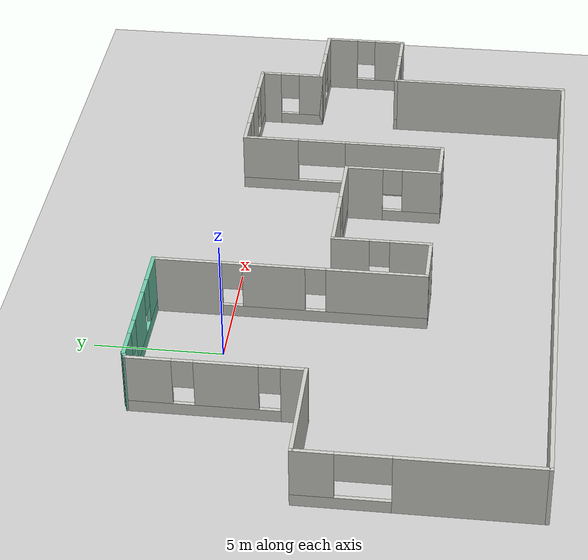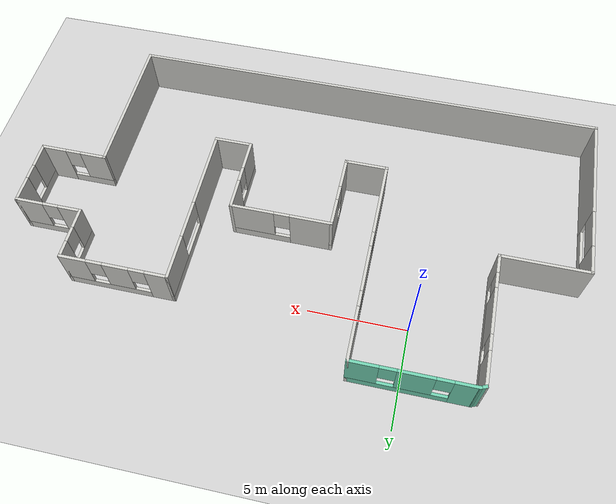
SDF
<sdf version="1.6">
 <world name="default">
  <light name="sun" type="directional">
   <pose>0 0 10 0 -0 0</pose>
   <diffuse>0.8 0.8 0.8 1</diffuse>
   <specular>0.2 0.2 0.2 1</specular>
   <attenuation>
    <range>1000</range>
    <constant>0.9</constant>
    <linear>0.01</linear>
    <quadratic>0.001</quadratic>
   </attenuation>
   <direction>-0.5 0.1 -0.9</direction>
  </light>
  <model name="ground_plane">
   <static>1</static>
   <link name="link">
    <collision name="collision">
     <geometry><plane><normal>0 0 1</normal><size>100 100</size></plane></geometry>
     <surface>
      <contact><collide_bitmask>65535</collide_bitmask></contact>
      <friction><ode><mu>100</mu><mu2>50</mu2></ode></friction>
     </surface>
    </collision>
    <visual name="visual">
     <cast_shadows>0</cast_shadows>
     <geometry><plane><normal>0 0 1</normal><size>100 100</size></plane></geometry>
     <material>
      <script><uri>file://media/materials/scripts/gazebo.material</uri><name>Gazebo/Grey</name></script>
     </material>
    </visual>
   </link>
  </model>
  <gravity>0 0 -9.8</gravity>
  <magnetic_field>6e-06 2.3e-05 -4.2e-05</magnetic_field>
  <atmosphere type="adiabatic"/>
  <physics name="default_physics" default="0" type="ode">
   <max_step_size>0.001</max_step_size>
   <real_time_factor>1</real_time_factor>
   <real_time_update_rate>1000</real_time_update_rate>
  </physics>
  <scene><ambient>0.4 0.4 0.4 1</ambient><background>0.7 0.7 0.7 1</background><shadows>1</shadows></scene>
  <spherical_coordinates>
   <surface_model>EARTH_WGS84</surface_model>
   <latitude_deg>0</latitude_deg>
   <longitude_deg>0</longitude_deg>
   <elevation>0</elevation>
   <heading_deg>0</heading_deg>
  </spherical_coordinates>
  <model name="building_0">
   <pose>6.1574 -4.71234 0 0 -0 0</pose>
   <link name="Wall_12">
    <pose>-6.575 7.76375 0 0 -0 0</pose>
    <visual name="Wall_12_Visual_0">
     <pose>-2.41181 0 1.25 0 -0 0</pose>
     <geometry><box><size>1.17637 0.15 2.5</size></box></geometry>
     <material>
      <script><uri>file://media/materials/scripts/gazebo.material</uri><name>Gazebo/Grey</name></script>
      <ambient>0.435294 0.796078 0.67451 1</ambient>
     </material>
     <meta><layer>0</layer></meta>
    </visual>
    <collision name="Wall_12_Collision_0">
     <geometry><box><size>1.17637 0.15 2.5</size></box></geometry>
     <pose>-2.41181 0 1.25 0 -0 0</pose>
    </collision>
    <visual name="Wall_12_Visual_1">
     <pose>0.588187 0 0.25 0 -0 0</pose>
     <geometry><box><size>4.82363 0.15 0.5</size></box></geometry>
     <material>
      <script><uri>file://media/materials/scripts/gazebo.material</uri><name>Gazebo/Grey</name></script>
      <ambient>0.435294 0.796078 0.67451 1</ambient>
     </material>
     <meta><layer>0</layer></meta>
    </visual>
    <collision name="Wall_12_Collision_1">
     <geometry><box><size>4.82363 0.15 0.5</size></box></geometry>
     <pose>0.588187 0 0.25 0 -0 0</pose>
    </collision>
    <visual name="Wall_12_Visual_2">
     <pose>-0.158626 0 1.5 0 -0 0</pose>
     <geometry><box><size>1.73 0.15 2</size></box></geometry>
     <material>
      <script><uri>file://media/materials/scripts/gazebo.material</uri><name>Gazebo/Grey</name></script>
      <ambient>0.435294 0.796078 0.67451 1</ambient>
     </material>
     <meta><layer>0</layer></meta>
    </visual>
    <collision name="Wall_12_Collision_2">
     <geometry><box><size>1.73 0.15 2</size></box></geometry>
     <pose>-0.158626 0 1.5 0 -0 0</pose>
    </collision>
    <visual name="Wall_12_Visual_3">
     <pose>2.25319 0 1.5 0 -0 0</pose>
     <geometry><box><size>1.49362 0.15 2</size></box></geometry>
     <material>
      <script><uri>file://media/materials/scripts/gazebo.material</uri><name>Gazebo/Grey</name></script>
      <ambient>0.435294 0.796078 0.67451 1</ambient>
     </material>
     <meta><layer>0</layer></meta>
    </visual>
    <collision name="Wall_12_Collision_3">
     <geometry><box><size>1.49362 0.15 2</size></box></geometry>
     <pose>2.25319 0 1.5 0 -0 0</pose>
    </collision>
    <visual name="Wall_12_Visual_4">
     <pose>-1.42363 0 1.9 0 -0 0</pose>
     <geometry><box><size>0.8 0.15 1.2</size></box></geometry>
     <material>
      <script><uri>file://media/materials/scripts/gazebo.material</uri><name>Gazebo/Grey</name></script>
      <ambient>0.435294 0.796078 0.67451 1</ambient>
     </material>
     <meta><layer>0</layer></meta>
    </visual>
    <collision name="Wall_12_Collision_4">
     <geometry><box><size>0.8 0.15 1.2</size></box></geometry>
     <pose>-1.42363 0 1.9 0 -0 0</pose>
    </collision>
    <visual name="Wall_12_Visual_5">
     <pose>1.10638 0 1.9 0 -0 0</pose>
     <geometry><box><size>0.8 0.15 1.2</size></box></geometry>
     <material>
      <script><uri>file://media/materials/scripts/gazebo.material</uri><name>Gazebo/Grey</name></script>
      <ambient>0.435294 0.796078 0.67451 1</ambient>
     </material>
     <meta><layer>0</layer></meta>
    </visual>
    <collision name="Wall_12_Collision_5">
     <geometry><box><size>0.8 0.15 1.2</size></box></geometry>
     <pose>1.10638 0 1.9 0 -0 0</pose>
    </collision>
   </link>
   <link name="Wall_14">
    <pose>-3.65 2.46375 0 0 -0 -1.5708</pose>
    <visual name="Wall_14_Visual_0">
     <pose>-4.00095 0 1.25 0 -0 0</pose>
     <geometry><box><size>2.7481 0.15 2.5</size></box></geometry>
     <material>
      <script><uri>file://media/materials/scripts/gazebo.material</uri><name>Gazebo/CeilingTiled</name></script>
      <ambient>0.435294 0.796078 0.67451 1</ambient>
     </material>
     <meta><layer>0</layer></meta>
    </visual>
    <collision name="Wall_14_Collision_0">
     <geometry><box><size>2.7481 0.15 2.5</size></box></geometry>
     <pose>-4.00095 0 1.25 0 -0 0</pose>
    </collision>
    <visual name="Wall_14_Visual_1">
     <pose>1.37405 0 0.25 0 -0 0</pose>
     <geometry><box><size>8.0019 0.15 0.5</size></box></geometry>
     <material>
      <script><uri>file://media/materials/scripts/gazebo.material</uri><name>Gazebo/CeilingTiled</name></script>
      <ambient>0.435294 0.796078 0.67451 1</ambient>
     </material>
     <meta><layer>0</layer></meta>
    </visual>
    <collision name="Wall_14_Collision_1">
     <geometry><box><size>8.0019 0.15 0.5</size></box></geometry>
     <pose>1.37405 0 0.25 0 -0 0</pose>
    </collision>
    <visual name="Wall_14_Visual_2">
     <pose>-0.606902 0 1.5 0 -0 0</pose>
     <geometry><box><size>2.44 0.15 2</size></box></geometry>
     <material>
      <script><uri>file://media/materials/scripts/gazebo.material</uri><name>Gazebo/CeilingTiled</name></script>
      <ambient>0.435294 0.796078 0.67451 1</ambient>
     </material>
     <meta><layer>0</layer></meta>
    </visual>
    <collision name="Wall_14_Collision_2">
     <geometry><box><size>2.44 0.15 2</size></box></geometry>
     <pose>-0.606902 0 1.5 0 -0 0</pose>
    </collision>
    <visual name="Wall_14_Visual_3">
     <pose>3.39405 0 1.5 0 -0 0</pose>
     <geometry><box><size>3.9619 0.15 2</size></box></geometry>
     <material>
      <script><uri>file://media/materials/scripts/gazebo.material</uri><name>Gazebo/CeilingTiled</name></script>
      <ambient>0.435294 0.796078 0.67451 1</ambient>
     </material>
     <meta><layer>0</layer></meta>
    </visual>
    <collision name="Wall_14_Collision_3">
     <geometry><box><size>3.9619 0.15 2</size></box></geometry>
     <pose>3.39405 0 1.5 0 -0 0</pose>
    </collision>
    <visual name="Wall_14_Visual_4">
     <pose>-2.2269 0 1.9 0 -0 0</pose>
     <geometry><box><size>0.8 0.15 1.2</size></box></geometry>
     <material>
      <script><uri>file://media/materials/scripts/gazebo.material</uri><name>Gazebo/CeilingTiled</name></script>
      <ambient>0.435294 0.796078 0.67451 1</ambient>
     </material>
     <meta><layer>0</layer></meta>
    </visual>
    <collision name="Wall_14_Collision_4">
     <geometry><box><size>0.8 0.15 1.2</size></box></geometry>
     <pose>-2.2269 0 1.9 0 -0 0</pose>
    </collision>
    <visual name="Wall_14_Visual_5">
     <pose>1.0131 0 1.9 0 -0 0</pose>
     <geometry><box><size>0.8 0.15 1.2</size></box></geometry>
     <material>
      <script><uri>file://media/materials/scripts/gazebo.material</uri><name>Gazebo/CeilingTiled</name></script>
      <ambient>0.435294 0.796078 0.67451 1</ambient>
     </material>
     <meta><layer>0</layer></meta>
    </visual>
    <collision name="Wall_14_Collision_5">
     <geometry><box><size>0.8 0.15 1.2</size></box></geometry>
     <pose>1.0131 0 1.9 0 -0 0</pose>
    </collision>
   </link>
   <link name="Wall_15">
    <collision name="Wall_15_Collision">
     <geometry><box><size>2.25 0.15 2.5</size></box></geometry>
     <pose>0 0 1.25 0 -0 0</pose>
    </collision>
    <visual name="Wall_15_Visual">
     <pose>0 0 1.25 0 -0 0</pose>
     <geometry><box><size>2.25 0.15 2.5</size></box></geometry>
     <material>
      <script><uri>file://media/materials/scripts/gazebo.material</uri><name>Gazebo/CeilingTiled</name></script>
      <ambient>0.435294 0.796078 0.67451 1</ambient>
     </material>
     <meta><layer>0</layer></meta>
    </visual>
    <pose>-2.6 -2.83624 0 0 -0 0</pose>
   </link>
   <link name="Wall_16">
    <pose>-1.55 -0.911245 0 0 -0 1.5708</pose>
    <visual name="Wall_16_Visual_0">
     <pose>-1.15905 0 1.25 0 -0 0</pose>
     <geometry><box><size>1.6819 0.15 2.5</size></box></geometry>
     <material>
      <script><uri>file://media/materials/scripts/gazebo.material</uri><name>Gazebo/CeilingTiled</name></script>
      <ambient>0.435294 0.796078 0.67451 1</ambient>
     </material>
     <meta><layer>0</layer></meta>
    </visual>
    <collision name="Wall_16_Collision_0">
     <geometry><box><size>1.6819 0.15 2.5</size></box></geometry>
     <pose>-1.15905 0 1.25 0 -0 0</pose>
    </collision>
    <visual name="Wall_16_Visual_1">
     <pose>0.840951 0 0.25 0 -0 0</pose>
     <geometry><box><size>2.3181 0.15 0.5</size></box></geometry>
     <material>
      <script><uri>file://media/materials/scripts/gazebo.material</uri><name>Gazebo/CeilingTiled</name></script>
      <ambient>0.435294 0.796078 0.67451 1</ambient>
     </material>
     <meta><layer>0</layer></meta>
    </visual>
    <collision name="Wall_16_Collision_1">
     <geometry><box><size>2.3181 0.15 0.5</size></box></geometry>
     <pose>0.840951 0 0.25 0 -0 0</pose>
    </collision>
    <visual name="Wall_16_Visual_2">
     <pose>1.24095 0 1.5 0 -0 0</pose>
     <geometry><box><size>1.5181 0.15 2</size></box></geometry>
     <material>
      <script><uri>file://media/materials/scripts/gazebo.material</uri><name>Gazebo/CeilingTiled</name></script>
      <ambient>0.435294 0.796078 0.67451 1</ambient>
     </material>
     <meta><layer>0</layer></meta>
    </visual>
    <collision name="Wall_16_Collision_2">
     <geometry><box><size>1.5181 0.15 2</size></box></geometry>
     <pose>1.24095 0 1.5 0 -0 0</pose>
    </collision>
    <visual name="Wall_16_Visual_3">
     <pose>0.081902 0 1.9 0 -0 0</pose>
     <geometry><box><size>0.8 0.15 1.2</size></box></geometry>
     <material>
      <script><uri>file://media/materials/scripts/gazebo.material</uri><name>Gazebo/CeilingTiled</name></script>
      <ambient>0.435294 0.796078 0.67451 1</ambient>
     </material>
     <meta><layer>0</layer></meta>
    </visual>
    <collision name="Wall_16_Collision_3">
     <geometry><box><size>0.8 0.15 1.2</size></box></geometry>
     <pose>0.081902 0 1.9 0 -0 0</pose>
    </collision>
   </link>
   <link name="Wall_17">
    <pose>1 1.01375 0 0 -0 0</pose>
    <visual name="Wall_17_Visual_0">
     <pose>-1.53594 0 1.25 0 -0 0</pose>
     <geometry><box><size>2.17812 0.15 2.5</size></box></geometry>
     <material>
      <script><uri>file://media/materials/scripts/gazebo.material</uri><name>Gazebo/CeilingTiled</name></script>
      <ambient>0.435294 0.796078 0.67451 1</ambient>
     </material>
     <meta><layer>0</layer></meta>
    </visual>
    <collision name="Wall_17_Collision_0">
     <geometry><box><size>2.17812 0.15 2.5</size></box></geometry>
     <pose>-1.53594 0 1.25 0 -0 0</pose>
    </collision>
    <visual name="Wall_17_Visual_1">
     <pose>1.08906 0 0.25 0 -0 0</pose>
     <geometry><box><size>3.07188 0.15 0.5</size></box></geometry>
     <material>
      <script><uri>file://media/materials/scripts/gazebo.material</uri><name>Gazebo/CeilingTiled</name></script>
      <ambient>0.435294 0.796078 0.67451 1</ambient>
     </material>
     <meta><layer>0</layer></meta>
    </visual>
    <collision name="Wall_17_Collision_1">
     <geometry><box><size>3.07188 0.15 0.5</size></box></geometry>
     <pose>1.08906 0 0.25 0 -0 0</pose>
    </collision>
    <visual name="Wall_17_Visual_2">
     <pose>1.48906 0 1.5 0 -0 0</pose>
     <geometry><box><size>2.27188 0.15 2</size></box></geometry>
     <material>
      <script><uri>file://media/materials/scripts/gazebo.material</uri><name>Gazebo/CeilingTiled</name></script>
      <ambient>0.435294 0.796078 0.67451 1</ambient>
     </material>
     <meta><layer>0</layer></meta>
    </visual>
    <collision name="Wall_17_Collision_2">
     <geometry><box><size>2.27188 0.15 2</size></box></geometry>
     <pose>1.48906 0 1.5 0 -0 0</pose>
    </collision>
    <visual name="Wall_17_Visual_3">
     <pose>-0.04688 0 1.9 0 -0 0</pose>
     <geometry><box><size>0.8 0.15 1.2</size></box></geometry>
     <material>
      <script><uri>file://media/materials/scripts/gazebo.material</uri><name>Gazebo/CeilingTiled</name></script>
      <ambient>0.435294 0.796078 0.67451 1</ambient>
     </material>
     <meta><layer>0</layer></meta>
    </visual>
    <collision name="Wall_17_Collision_3">
     <geometry><box><size>0.8 0.15 1.2</size></box></geometry>
     <pose>-0.04688 0 1.9 0 -0 0</pose>
    </collision>
   </link>
   <link name="Wall_18">
    <pose>3.55 -0.911245 0 0 -0 -1.5708</pose>
    <visual name="Wall_18_Visual_0">
     <pose>-1.20095 0 1.25 0 -0 0</pose>
     <geometry><box><size>1.5981 0.15 2.5</size></box></geometry>
     <material>
      <script><uri>file://media/materials/scripts/gazebo.material</uri><name>Gazebo/CeilingTiled</name></script>
      <ambient>0.435294 0.796078 0.67451 1</ambient>
     </material>
     <meta><layer>0</layer></meta>
    </visual>
    <collision name="Wall_18_Collision_0">
     <geometry><box><size>1.5981 0.15 2.5</size></box></geometry>
     <pose>-1.20095 0 1.25 0 -0 0</pose>
    </collision>
    <visual name="Wall_18_Visual_1">
     <pose>0.799049 0 0.25 0 -0 0</pose>
     <geometry><box><size>2.4019 0.15 0.5</size></box></geometry>
     <material>
      <script><uri>file://media/materials/scripts/gazebo.material</uri><name>Gazebo/CeilingTiled</name></script>
      <ambient>0.435294 0.796078 0.67451 1</ambient>
     </material>
     <meta><layer>0</layer></meta>
    </visual>
    <collision name="Wall_18_Collision_1">
     <geometry><box><size>2.4019 0.15 0.5</size></box></geometry>
     <pose>0.799049 0 0.25 0 -0 0</pose>
    </collision>
    <visual name="Wall_18_Visual_2">
     <pose>1.19905 0 1.5 0 -0 0</pose>
     <geometry><box><size>1.6019 0.15 2</size></box></geometry>
     <material>
      <script><uri>file://media/materials/scripts/gazebo.material</uri><name>Gazebo/CeilingTiled</name></script>
      <ambient>0.435294 0.796078 0.67451 1</ambient>
     </material>
     <meta><layer>0</layer></meta>
    </visual>
    <collision name="Wall_18_Collision_2">
     <geometry><box><size>1.6019 0.15 2</size></box></geometry>
     <pose>1.19905 0 1.5 0 -0 0</pose>
    </collision>
    <visual name="Wall_18_Visual_3">
     <pose>-0.001901 0 1.9 0 -0 0</pose>
     <geometry><box><size>0.8 0.15 1.2</size></box></geometry>
     <material>
      <script><uri>file://media/materials/scripts/gazebo.material</uri><name>Gazebo/CeilingTiled</name></script>
      <ambient>0.435294 0.796078 0.67451 1</ambient>
     </material>
     <meta><layer>0</layer></meta>
    </visual>
    <collision name="Wall_18_Collision_3">
     <geometry><box><size>0.8 0.15 1.2</size></box></geometry>
     <pose>-0.001901 0 1.9 0 -0 0</pose>
    </collision>
   </link>
   <link name="Wall_19">
    <collision name="Wall_19_Collision">
     <geometry><box><size>2 0.15 2.5</size></box></geometry>
     <pose>0 0 1.25 0 -0 0</pose>
    </collision>
    <visual name="Wall_19_Visual">
     <pose>0 0 1.25 0 -0 0</pose>
     <geometry><box><size>2 0.15 2.5</size></box></geometry>
     <material>
      <script><uri>file://media/materials/scripts/gazebo.material</uri><name>Gazebo/CeilingTiled</name></script>
      <ambient>0.435294 0.796078 0.67451 1</ambient>
     </material>
     <meta><layer>0</layer></meta>
    </visual>
    <pose>4.475 -2.83624 0 0 -0 0</pose>
   </link>
   <link name="Wall_20">
    <pose>5.4 1.33875 0 0 -0 1.5708</pose>
    <visual name="Wall_20_Visual_0">
     <pose>-2.16905 0 1.25 0 -0 0</pose>
     <geometry><box><size>4.1619 0.15 2.5</size></box></geometry>
     <material>
      <script><uri>file://media/materials/scripts/gazebo.material</uri><name>Gazebo/CeilingTiled</name></script>
      <ambient>0.435294 0.796078 0.67451 1</ambient>
     </material>
     <meta><layer>0</layer></meta>
    </visual>
    <collision name="Wall_20_Collision_0">
     <geometry><box><size>4.1619 0.15 2.5</size></box></geometry>
     <pose>-2.16905 0 1.25 0 -0 0</pose>
    </collision>
    <visual name="Wall_20_Visual_1">
     <pose>2.08095 0 0.25 0 -0 0</pose>
     <geometry><box><size>4.3381 0.15 0.5</size></box></geometry>
     <material>
      <script><uri>file://media/materials/scripts/gazebo.material</uri><name>Gazebo/CeilingTiled</name></script>
      <ambient>0.435294 0.796078 0.67451 1</ambient>
     </material>
     <meta><layer>0</layer></meta>
    </visual>
    <collision name="Wall_20_Collision_1">
     <geometry><box><size>4.3381 0.15 0.5</size></box></geometry>
     <pose>2.08095 0 0.25 0 -0 0</pose>
    </collision>
    <visual name="Wall_20_Visual_2">
     <pose>3.08095 0 1.5 0 -0 0</pose>
     <geometry><box><size>2.3381 0.15 2</size></box></geometry>
     <material>
      <script><uri>file://media/materials/scripts/gazebo.material</uri><name>Gazebo/CeilingTiled</name></script>
      <ambient>0.435294 0.796078 0.67451 1</ambient>
     </material>
     <meta><layer>0</layer></meta>
    </visual>
    <collision name="Wall_20_Collision_2">
     <geometry><box><size>2.3381 0.15 2</size></box></geometry>
     <pose>3.08095 0 1.5 0 -0 0</pose>
    </collision>
    <visual name="Wall_20_Visual_3">
     <pose>0.911901 0 1.9 0 -0 0</pose>
     <geometry><box><size>2 0.15 1.2</size></box></geometry>
     <material>
      <script><uri>file://media/materials/scripts/gazebo.material</uri><name>Gazebo/CeilingTiled</name></script>
      <ambient>0.435294 0.796078 0.67451 1</ambient>
     </material>
     <meta><layer>0</layer></meta>
    </visual>
    <collision name="Wall_20_Collision_3">
     <geometry><box><size>2 0.15 1.2</size></box></geometry>
     <pose>0.911901 0 1.9 0 -0 0</pose>
    </collision>
   </link>
   <link name="Wall_21">
    <pose>8.075 5.51375 0 0 -0 0</pose>
    <visual name="Wall_21_Visual_0">
     <pose>-2.15594 0 1.25 0 -0 0</pose>
     <geometry><box><size>1.18812 0.15 2.5</size></box></geometry>
     <material>
      <script><uri>file://media/materials/scripts/gazebo.material</uri><name>Gazebo/CeilingTiled</name></script>
      <ambient>0.435294 0.796078 0.67451 1</ambient>
     </material>
     <meta><layer>0</layer></meta>
    </visual>
    <collision name="Wall_21_Collision_0">
     <geometry><box><size>1.18812 0.15 2.5</size></box></geometry>
     <pose>-2.15594 0 1.25 0 -0 0</pose>
    </collision>
    <visual name="Wall_21_Visual_1">
     <pose>0.59406 0 0.25 0 -0 0</pose>
     <geometry><box><size>4.31188 0.15 0.5</size></box></geometry>
     <material>
      <script><uri>file://media/materials/scripts/gazebo.material</uri><name>Gazebo/CeilingTiled</name></script>
      <ambient>0.435294 0.796078 0.67451 1</ambient>
     </material>
     <meta><layer>0</layer></meta>
    </visual>
    <collision name="Wall_21_Collision_1">
     <geometry><box><size>4.31188 0.15 0.5</size></box></geometry>
     <pose>0.59406 0 0.25 0 -0 0</pose>
    </collision>
    <visual name="Wall_21_Visual_2">
     <pose>-0.10188 0 1.5 0 -0 0</pose>
     <geometry><box><size>1.32 0.15 2</size></box></geometry>
     <material>
      <script><uri>file://media/materials/scripts/gazebo.material</uri><name>Gazebo/CeilingTiled</name></script>
      <ambient>0.435294 0.796078 0.67451 1</ambient>
     </material>
     <meta><layer>0</layer></meta>
    </visual>
    <collision name="Wall_21_Collision_2">
     <geometry><box><size>1.32 0.15 2</size></box></geometry>
     <pose>-0.10188 0 1.5 0 -0 0</pose>
    </collision>
    <visual name="Wall_21_Visual_3">
     <pose>2.05406 0 1.5 0 -0 0</pose>
     <geometry><box><size>1.39188 0.15 2</size></box></geometry>
     <material>
      <script><uri>file://media/materials/scripts/gazebo.material</uri><name>Gazebo/CeilingTiled</name></script>
      <ambient>0.435294 0.796078 0.67451 1</ambient>
     </material>
     <meta><layer>0</layer></meta>
    </visual>
    <collision name="Wall_21_Collision_3">
     <geometry><box><size>1.39188 0.15 2</size></box></geometry>
     <pose>2.05406 0 1.5 0 -0 0</pose>
    </collision>
    <visual name="Wall_21_Visual_4">
     <pose>-1.16188 0 1.9 0 -0 0</pose>
     <geometry><box><size>0.8 0.15 1.2</size></box></geometry>
     <material>
      <script><uri>file://media/materials/scripts/gazebo.material</uri><name>Gazebo/CeilingTiled</name></script>
      <ambient>0.435294 0.796078 0.67451 1</ambient>
     </material>
     <meta><layer>0</layer></meta>
    </visual>
    <collision name="Wall_21_Collision_4">
     <geometry><box><size>0.8 0.15 1.2</size></box></geometry>
     <pose>-1.16188 0 1.9 0 -0 0</pose>
    </collision>
    <visual name="Wall_21_Visual_5">
     <pose>0.95812 0 1.9 0 -0 0</pose>
     <geometry><box><size>0.8 0.15 1.2</size></box></geometry>
     <material>
      <script><uri>file://media/materials/scripts/gazebo.material</uri><name>Gazebo/CeilingTiled</name></script>
      <ambient>0.435294 0.796078 0.67451 1</ambient>
     </material>
     <meta><layer>0</layer></meta>
    </visual>
    <collision name="Wall_21_Collision_5">
     <geometry><box><size>0.8 0.15 1.2</size></box></geometry>
     <pose>0.95812 0 1.9 0 -0 0</pose>
    </collision>
   </link>
   <link name="Wall_22">
    <pose>10.75 4.21375 0 0 -0 -1.5708</pose>
    <visual name="Wall_22_Visual_0">
     <pose>-0.925951 0 1.25 0 -0 0</pose>
     <geometry><box><size>0.898099 0.15 2.5</size></box></geometry>
     <material>
      <script><uri>file://media/materials/scripts/gazebo.material</uri><name>Gazebo/CeilingTiled</name></script>
      <ambient>0.435294 0.796078 0.67451 1</ambient>
     </material>
     <meta><layer>0</layer></meta>
    </visual>
    <collision name="Wall_22_Collision_0">
     <geometry><box><size>0.898099 0.15 2.5</size></box></geometry>
     <pose>-0.925951 0 1.25 0 -0 0</pose>
    </collision>
    <visual name="Wall_22_Visual_1">
     <pose>0.449049 0 0.25 0 -0 0</pose>
     <geometry><box><size>1.8519 0.15 0.5</size></box></geometry>
     <material>
      <script><uri>file://media/materials/scripts/gazebo.material</uri><name>Gazebo/CeilingTiled</name></script>
      <ambient>0.435294 0.796078 0.67451 1</ambient>
     </material>
     <meta><layer>0</layer></meta>
    </visual>
    <collision name="Wall_22_Collision_1">
     <geometry><box><size>1.8519 0.15 0.5</size></box></geometry>
     <pose>0.449049 0 0.25 0 -0 0</pose>
    </collision>
    <visual name="Wall_22_Visual_2">
     <pose>0.849049 0 1.5 0 -0 0</pose>
     <geometry><box><size>1.0519 0.15 2</size></box></geometry>
     <material>
      <script><uri>file://media/materials/scripts/gazebo.material</uri><name>Gazebo/CeilingTiled</name></script>
      <ambient>0.435294 0.796078 0.67451 1</ambient>
     </material>
     <meta><layer>0</layer></meta>
    </visual>
    <collision name="Wall_22_Collision_2">
     <geometry><box><size>1.0519 0.15 2</size></box></geometry>
     <pose>0.849049 0 1.5 0 -0 0</pose>
    </collision>
    <visual name="Wall_22_Visual_3">
     <pose>-0.076901 0 1.9 0 -0 0</pose>
     <geometry><box><size>0.8 0.15 1.2</size></box></geometry>
     <material>
      <script><uri>file://media/materials/scripts/gazebo.material</uri><name>Gazebo/CeilingTiled</name></script>
      <ambient>0.435294 0.796078 0.67451 1</ambient>
     </material>
     <meta><layer>0</layer></meta>
    </visual>
    <collision name="Wall_22_Collision_3">
     <geometry><box><size>0.8 0.15 1.2</size></box></geometry>
     <pose>-0.076901 0 1.9 0 -0 0</pose>
    </collision>
   </link>
   <link name="Wall_23">
    <pose>12.425 2.91376 0 0 -0 0</pose>
    <visual name="Wall_23_Visual_0">
     <pose>-1.13094 0 1.25 0 -0 0</pose>
     <geometry><box><size>1.23812 0.15 2.5</size></box></geometry>
     <material>
      <script><uri>file://media/materials/scripts/gazebo.material</uri><name>Gazebo/CeilingTiled</name></script>
      <ambient>0.435294 0.796078 0.67451 1</ambient>
     </material>
     <meta><layer>0</layer></meta>
    </visual>
    <collision name="Wall_23_Collision_0">
     <geometry><box><size>1.23812 0.15 2.5</size></box></geometry>
     <pose>-1.13094 0 1.25 0 -0 0</pose>
    </collision>
    <visual name="Wall_23_Visual_1">
     <pose>0.61906 0 0.25 0 -0 0</pose>
     <geometry><box><size>2.26188 0.15 0.5</size></box></geometry>
     <material>
      <script><uri>file://media/materials/scripts/gazebo.material</uri><name>Gazebo/CeilingTiled</name></script>
      <ambient>0.435294 0.796078 0.67451 1</ambient>
     </material>
     <meta><layer>0</layer></meta>
    </visual>
    <collision name="Wall_23_Collision_1">
     <geometry><box><size>2.26188 0.15 0.5</size></box></geometry>
     <pose>0.61906 0 0.25 0 -0 0</pose>
    </collision>
    <visual name="Wall_23_Visual_2">
     <pose>1.01906 0 1.5 0 -0 0</pose>
     <geometry><box><size>1.46188 0.15 2</size></box></geometry>
     <material>
      <script><uri>file://media/materials/scripts/gazebo.material</uri><name>Gazebo/CeilingTiled</name></script>
      <ambient>0.435294 0.796078 0.67451 1</ambient>
     </material>
     <meta><layer>0</layer></meta>
    </visual>
    <collision name="Wall_23_Collision_2">
     <geometry><box><size>1.46188 0.15 2</size></box></geometry>
     <pose>1.01906 0 1.5 0 -0 0</pose>
    </collision>
    <visual name="Wall_23_Visual_3">
     <pose>-0.11188 0 1.9 0 -0 0</pose>
     <geometry><box><size>0.8 0.15 1.2</size></box></geometry>
     <material>
      <script><uri>file://media/materials/scripts/gazebo.material</uri><name>Gazebo/CeilingTiled</name></script>
      <ambient>0.435294 0.796078 0.67451 1</ambient>
     </material>
     <meta><layer>0</layer></meta>
    </visual>
    <collision name="Wall_23_Collision_3">
     <geometry><box><size>0.8 0.15 1.2</size></box></geometry>
     <pose>-0.11188 0 1.9 0 -0 0</pose>
    </collision>
   </link>
   <link name="Wall_24">
    <pose>14.1 1.23876 0 0 -0 -1.5708</pose>
    <visual name="Wall_24_Visual_0">
     <pose>-1.06095 0 1.25 0 -0 0</pose>
     <geometry><box><size>1.3781 0.15 2.5</size></box></geometry>
     <material>
      <script><uri>file://media/materials/scripts/gazebo.material</uri><name>Gazebo/CeilingTiled</name></script>
      <ambient>0.435294 0.796078 0.67451 1</ambient>
     </material>
     <meta><layer>0</layer></meta>
    </visual>
    <collision name="Wall_24_Collision_0">
     <geometry><box><size>1.3781 0.15 2.5</size></box></geometry>
     <pose>-1.06095 0 1.25 0 -0 0</pose>
    </collision>
    <visual name="Wall_24_Visual_1">
     <pose>0.689049 0 0.25 0 -0 0</pose>
     <geometry><box><size>2.1219 0.15 0.5</size></box></geometry>
     <material>
      <script><uri>file://media/materials/scripts/gazebo.material</uri><name>Gazebo/CeilingTiled</name></script>
      <ambient>0.435294 0.796078 0.67451 1</ambient>
     </material>
     <meta><layer>0</layer></meta>
    </visual>
    <collision name="Wall_24_Collision_1">
     <geometry><box><size>2.1219 0.15 0.5</size></box></geometry>
     <pose>0.689049 0 0.25 0 -0 0</pose>
    </collision>
    <visual name="Wall_24_Visual_2">
     <pose>1.08905 0 1.5 0 -0 0</pose>
     <geometry><box><size>1.3219 0.15 2</size></box></geometry>
     <material>
      <script><uri>file://media/materials/scripts/gazebo.material</uri><name>Gazebo/CeilingTiled</name></script>
      <ambient>0.435294 0.796078 0.67451 1</ambient>
     </material>
     <meta><layer>0</layer></meta>
    </visual>
    <collision name="Wall_24_Collision_2">
     <geometry><box><size>1.3219 0.15 2</size></box></geometry>
     <pose>1.08905 0 1.5 0 -0 0</pose>
    </collision>
    <visual name="Wall_24_Visual_3">
     <pose>0.028098 0 1.9 0 -0 0</pose>
     <geometry><box><size>0.8 0.15 1.2</size></box></geometry>
     <material>
      <script><uri>file://media/materials/scripts/gazebo.material</uri><name>Gazebo/CeilingTiled</name></script>
      <ambient>0.435294 0.796078 0.67451 1</ambient>
     </material>
     <meta><layer>0</layer></meta>
    </visual>
    <collision name="Wall_24_Collision_3">
     <geometry><box><size>0.8 0.15 1.2</size></box></geometry>
     <pose>0.028098 0 1.9 0 -0 0</pose>
    </collision>
   </link>
   <link name="Wall_25">
    <pose>12.425 -0.436245 0 0 -0 3.14159</pose>
    <visual name="Wall_25_Visual_0">
     <pose>-1.07906 0 1.25 0 -0 0</pose>
     <geometry><box><size>1.34188 0.15 2.5</size></box></geometry>
     <material>
      <script><uri>file://media/materials/scripts/gazebo.material</uri><name>Gazebo/CeilingTiled</name></script>
      <ambient>0.435294 0.796078 0.67451 1</ambient>
     </material>
     <meta><layer>0</layer></meta>
    </visual>
    <collision name="Wall_25_Collision_0">
     <geometry><box><size>1.34188 0.15 2.5</size></box></geometry>
     <pose>-1.07906 0 1.25 0 -0 0</pose>
    </collision>
    <visual name="Wall_25_Visual_1">
     <pose>0.67094 0 0.25 0 -0 0</pose>
     <geometry><box><size>2.15812 0.15 0.5</size></box></geometry>
     <material>
      <script><uri>file://media/materials/scripts/gazebo.material</uri><name>Gazebo/CeilingTiled</name></script>
      <ambient>0.435294 0.796078 0.67451 1</ambient>
     </material>
     <meta><layer>0</layer></meta>
    </visual>
    <collision name="Wall_25_Collision_1">
     <geometry><box><size>2.15812 0.15 0.5</size></box></geometry>
     <pose>0.67094 0 0.25 0 -0 0</pose>
    </collision>
    <visual name="Wall_25_Visual_2">
     <pose>1.07094 0 1.5 0 -0 0</pose>
     <geometry><box><size>1.35812 0.15 2</size></box></geometry>
     <material>
      <script><uri>file://media/materials/scripts/gazebo.material</uri><name>Gazebo/CeilingTiled</name></script>
      <ambient>0.435294 0.796078 0.67451 1</ambient>
     </material>
     <meta><layer>0</layer></meta>
    </visual>
    <collision name="Wall_25_Collision_2">
     <geometry><box><size>1.35812 0.15 2</size></box></geometry>
     <pose>1.07094 0 1.5 0 -0 0</pose>
    </collision>
    <visual name="Wall_25_Visual_3">
     <pose>-0.00812 0 1.9 0 -0 0</pose>
     <geometry><box><size>0.8 0.15 1.2</size></box></geometry>
     <material>
      <script><uri>file://media/materials/scripts/gazebo.material</uri><name>Gazebo/CeilingTiled</name></script>
      <ambient>0.435294 0.796078 0.67451 1</ambient>
     </material>
     <meta><layer>0</layer></meta>
    </visual>
    <collision name="Wall_25_Collision_3">
     <geometry><box><size>0.8 0.15 1.2</size></box></geometry>
     <pose>-0.00812 0 1.9 0 -0 0</pose>
    </collision>
   </link>
   <link name="Wall_26">
    <collision name="Wall_26_Collision">
     <geometry><box><size>7.5 0.15 2.5</size></box></geometry>
     <pose>0 0 1.25 0 -0 0</pose>
    </collision>
    <visual name="Wall_26_Visual">
     <pose>0 0 1.25 0 -0 0</pose>
     <geometry><box><size>7.5 0.15 2.5</size></box></geometry>
     <material>
      <script><uri>file://media/materials/scripts/gazebo.material</uri><name>Gazebo/CeilingTiled</name></script>
      <ambient>0.435294 0.796078 0.67451 1</ambient>
     </material>
     <meta><layer>0</layer></meta>
    </visual>
    <pose>10.75 -4.11125 0 0 -0 -1.5708</pose>
   </link>
   <link name="Wall_27">
    <collision name="Wall_27_Collision">
     <geometry><box><size>25 0.15 2.5</size></box></geometry>
     <pose>0 0 1.25 0 -0 0</pose>
    </collision>
    <visual name="Wall_27_Visual">
     <pose>0 0 1.25 0 -0 0</pose>
     <geometry><box><size>25 0.15 2.5</size></box></geometry>
     <material>
      <script><uri>file://media/materials/scripts/gazebo.material</uri><name>Gazebo/CeilingTiled</name></script>
      <ambient>0.435294 0.796078 0.67451 1</ambient>
     </material>
     <meta><layer>0</layer></meta>
    </visual>
    <pose>-1.675 -7.78625 0 0 -0 3.14159</pose>
   </link>
   <link name="Wall_28">
    <pose>-14.1 -3.36124 0 0 -0 1.5708</pose>
    <visual name="Wall_28_Visual_0">
     <pose>-1.78126 0 1.25 0 -0 0</pose>
     <geometry><box><size>5.43749 0.15 2.5</size></box></geometry>
     <material>
      <script><uri>file://media/materials/scripts/gazebo.material</uri><name>Gazebo/CeilingTiled</name></script>
      <ambient>0.435294 0.796078 0.67451 1</ambient>
     </material>
     <meta><layer>0</layer></meta>
    </visual>
    <collision name="Wall_28_Collision_0">
     <geometry><box><size>5.43749 0.15 2.5</size></box></geometry>
     <pose>-1.78126 0 1.25 0 -0 0</pose>
    </collision>
    <visual name="Wall_28_Visual_1">
     <pose>2.71874 0 0.25 0 -0 0</pose>
     <geometry><box><size>3.56251 0.15 0.5</size></box></geometry>
     <material>
      <script><uri>file://media/materials/scripts/gazebo.material</uri><name>Gazebo/CeilingTiled</name></script>
      <ambient>0.435294 0.796078 0.67451 1</ambient>
     </material>
     <meta><layer>0</layer></meta>
    </visual>
    <collision name="Wall_28_Collision_1">
     <geometry><box><size>3.56251 0.15 0.5</size></box></geometry>
     <pose>2.71874 0 0.25 0 -0 0</pose>
    </collision>
    <visual name="Wall_28_Visual_2">
     <pose>3.71874 0 1.5 0 -0 0</pose>
     <geometry><box><size>1.56251 0.15 2</size></box></geometry>
     <material>
      <script><uri>file://media/materials/scripts/gazebo.material</uri><name>Gazebo/CeilingTiled</name></script>
      <ambient>0.435294 0.796078 0.67451 1</ambient>
     </material>
     <meta><layer>0</layer></meta>
    </visual>
    <collision name="Wall_28_Collision_2">
     <geometry><box><size>1.56251 0.15 2</size></box></geometry>
     <pose>3.71874 0 1.5 0 -0 0</pose>
    </collision>
    <visual name="Wall_28_Visual_3">
     <pose>1.93749 0 1.9 0 -0 0</pose>
     <geometry><box><size>2 0.15 1.2</size></box></geometry>
     <material>
      <script><uri>file://media/materials/scripts/gazebo.material</uri><name>Gazebo/CeilingTiled</name></script>
      <ambient>0.435294 0.796078 0.67451 1</ambient>
     </material>
     <meta><layer>0</layer></meta>
    </visual>
    <collision name="Wall_28_Collision_3">
     <geometry><box><size>2 0.15 1.2</size></box></geometry>
     <pose>1.93749 0 1.9 0 -0 0</pose>
    </collision>
   </link>
   <link name="Wall_29">
    <collision name="Wall_29_Collision">
     <geometry><box><size>4.5 0.15 2.5</size></box></geometry>
     <pose>0 0 1.25 0 -0 0</pose>
    </collision>
    <visual name="Wall_29_Visual">
     <pose>0 0 1.25 0 -0 0</pose>
     <geometry><box><size>4.5 0.15 2.5</size></box></geometry>
     <material>
      <script><uri>file://media/materials/scripts/gazebo.material</uri><name>Gazebo/CeilingTiled</name></script>
      <ambient>0.435294 0.796078 0.67451 1</ambient>
     </material>
     <meta><layer>0</layer></meta>
    </visual>
    <pose>-11.925 1.06376 0 0 -0 0</pose>
   </link>
   <link name="Wall_30">
    <pose>-9.75 4.36376 0 0 -0 1.5708</pose>
    <visual name="Wall_30_Visual_0">
     <pose>-2.87226 0 1.25 0 -0 0</pose>
     <geometry><box><size>1.00549 0.15 2.5</size></box></geometry>
     <material>
      <script><uri>file://media/materials/scripts/gazebo.material</uri><name>Gazebo/CeilingTiled</name></script>
      <ambient>0.435294 0.796078 0.67451 1</ambient>
     </material>
     <meta><layer>0</layer></meta>
    </visual>
    <collision name="Wall_30_Collision_0">
     <geometry><box><size>1.00549 0.15 2.5</size></box></geometry>
     <pose>-2.87226 0 1.25 0 -0 0</pose>
    </collision>
    <visual name="Wall_30_Visual_1">
     <pose>0.502743 0 0.25 0 -0 0</pose>
     <geometry><box><size>5.74451 0.15 0.5</size></box></geometry>
     <material>
      <script><uri>file://media/materials/scripts/gazebo.material</uri><name>Gazebo/CeilingTiled</name></script>
      <ambient>0.435294 0.796078 0.67451 1</ambient>
     </material>
     <meta><layer>0</layer></meta>
    </visual>
    <collision name="Wall_30_Collision_1">
     <geometry><box><size>5.74451 0.15 0.5</size></box></geometry>
     <pose>0.502743 0 0.25 0 -0 0</pose>
    </collision>
    <visual name="Wall_30_Visual_2">
     <pose>-0.382514 0 1.5 0 -0 0</pose>
     <geometry><box><size>2.374 0.15 2</size></box></geometry>
     <material>
      <script><uri>file://media/materials/scripts/gazebo.material</uri><name>Gazebo/CeilingTiled</name></script>
      <ambient>0.435294 0.796078 0.67451 1</ambient>
     </material>
     <meta><layer>0</layer></meta>
    </visual>
    <collision name="Wall_30_Collision_2">
     <geometry><box><size>2.374 0.15 2</size></box></geometry>
     <pose>-0.382514 0 1.5 0 -0 0</pose>
    </collision>
    <visual name="Wall_30_Visual_3">
     <pose>2.48974 0 1.5 0 -0 0</pose>
     <geometry><box><size>1.77051 0.15 2</size></box></geometry>
     <material>
      <script><uri>file://media/materials/scripts/gazebo.material</uri><name>Gazebo/CeilingTiled</name></script>
      <ambient>0.435294 0.796078 0.67451 1</ambient>
     </material>
     <meta><layer>0</layer></meta>
    </visual>
    <collision name="Wall_30_Collision_3">
     <geometry><box><size>1.77051 0.15 2</size></box></geometry>
     <pose>2.48974 0 1.5 0 -0 0</pose>
    </collision>
    <visual name="Wall_30_Visual_4">
     <pose>-1.96951 0 1.9 0 -0 0</pose>
     <geometry><box><size>0.8 0.15 1.2</size></box></geometry>
     <material>
      <script><uri>file://media/materials/scripts/gazebo.material</uri><name>Gazebo/CeilingTiled</name></script>
      <ambient>0.435294 0.796078 0.67451 1</ambient>
     </material>
     <meta><layer>0</layer></meta>
    </visual>
    <collision name="Wall_30_Collision_4">
     <geometry><box><size>0.8 0.15 1.2</size></box></geometry>
     <pose>-1.96951 0 1.9 0 -0 0</pose>
    </collision>
    <visual name="Wall_30_Visual_5">
     <pose>1.20449 0 1.9 0 -0 0</pose>
     <geometry><box><size>0.8 0.15 1.2</size></box></geometry>
     <material>
      <script><uri>file://media/materials/scripts/gazebo.material</uri><name>Gazebo/CeilingTiled</name></script>
      <ambient>0.435294 0.796078 0.67451 1</ambient>
     </material>
     <meta><layer>0</layer></meta>
    </visual>
    <collision name="Wall_30_Collision_5">
     <geometry><box><size>0.8 0.15 1.2</size></box></geometry>
     <pose>1.20449 0 1.9 0 -0 0</pose>
    </collision>
   </link>
   <link name="Wall_31">
    <collision name="Wall_31_Collision">
     <geometry><box><size>0.419258 0.15 2.5</size></box></geometry>
     <pose>0 0 1.25 0 -0 0</pose>
    </collision>
    <visual name="Wall_31_Visual">
     <pose>0 0 1.25 0 -0 0</pose>
     <geometry><box><size>0.419258 0.15 2.5</size></box></geometry>
     <material>
      <script><uri>file://media/materials/scripts/gazebo.material</uri><name>Gazebo/Grey</name></script>
      <ambient>0.435294 0.796078 0.67451 1</ambient>
     </material>
     <meta><layer>0</layer></meta>
    </visual>
    <pose>-9.625 7.71376 0 0 -0 0.380506</pose>
   </link>
   <static>1</static>
  </model>
 </world>
</sdf>
